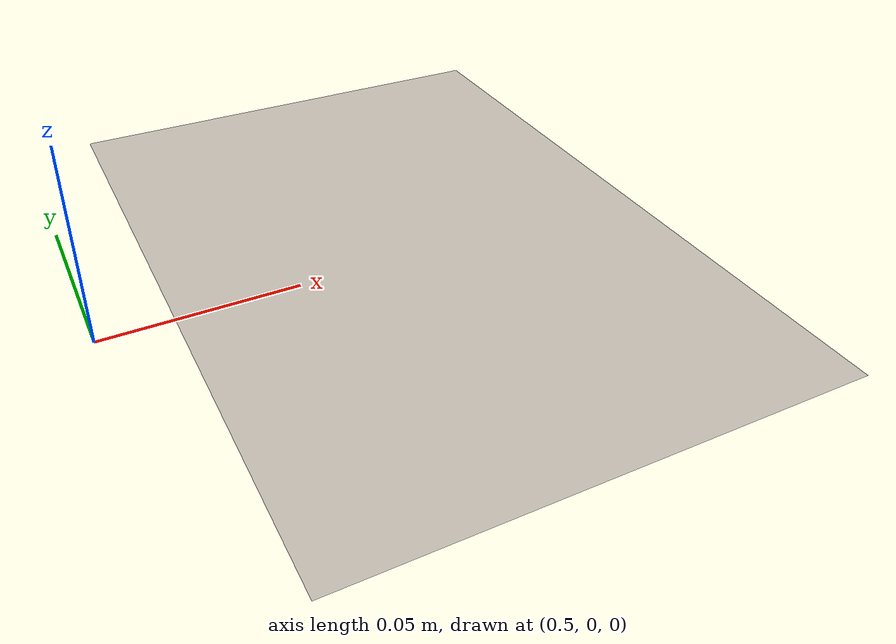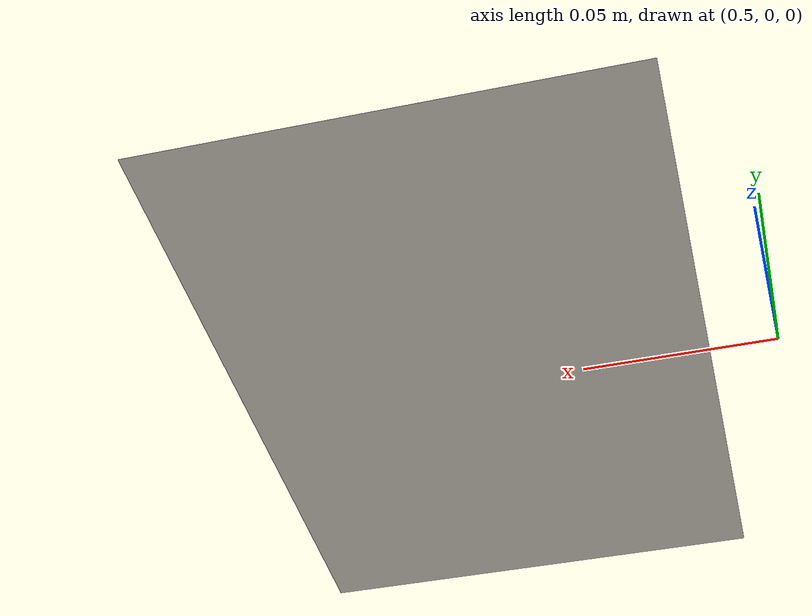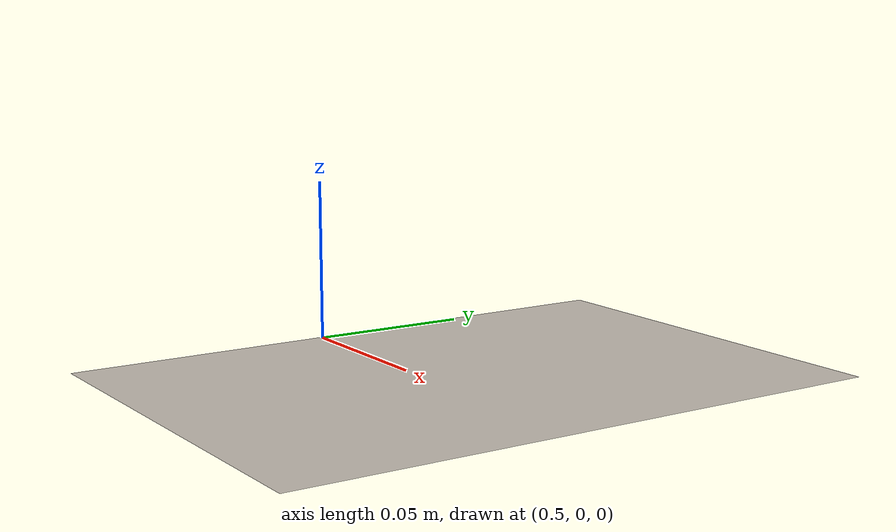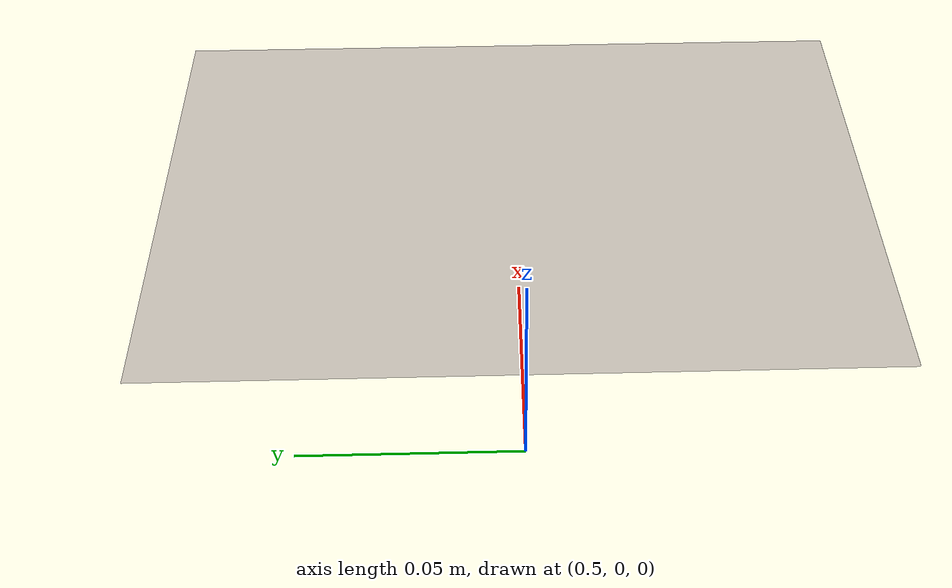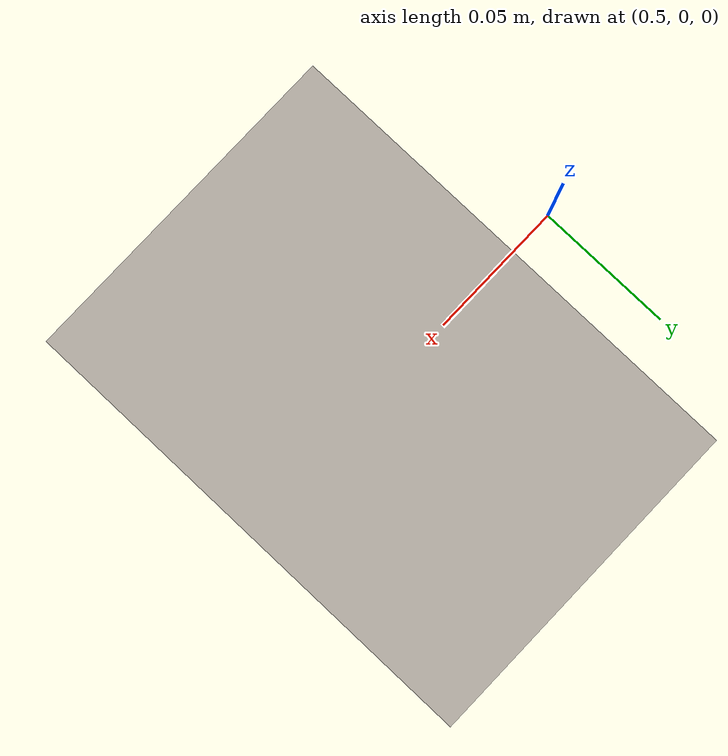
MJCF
<mujoco model="obj_board_ur5e">
  <asset>
    <texture name="drawing_tex" type="2d" file="../openmanipulator_x/assets/drawing_board_template.png"/>
    <material name="drawing_mat" texture="drawing_tex" texrepeat="0 0"/>
    <mesh name="board_mesh" file="../openmanipulator_x/assets/board.obj" inertia="shell"/>
  </asset>

  <worldbody>
    <body name="obj_board" pos="0.58 0 0.0" euler="0 0 0">
      <geom name="obj_board_geom" type="mesh" mesh="board_mesh" pos="0 0 0.0025" material="drawing_mat"/>
      <inertial pos="0 0 0" mass="1" diaginertia="0.1 0.1 0.1"/>
    </body>
  </worldbody>
</mujoco>
